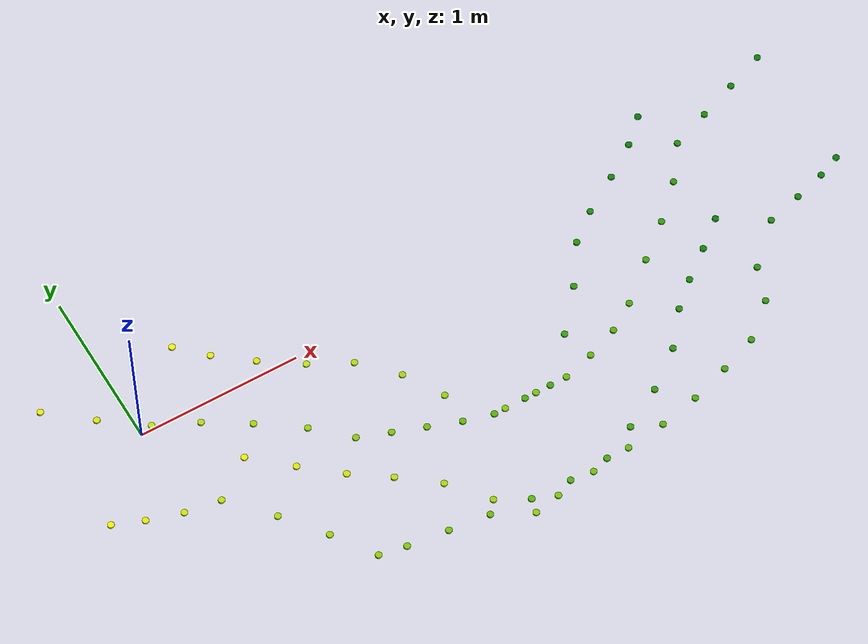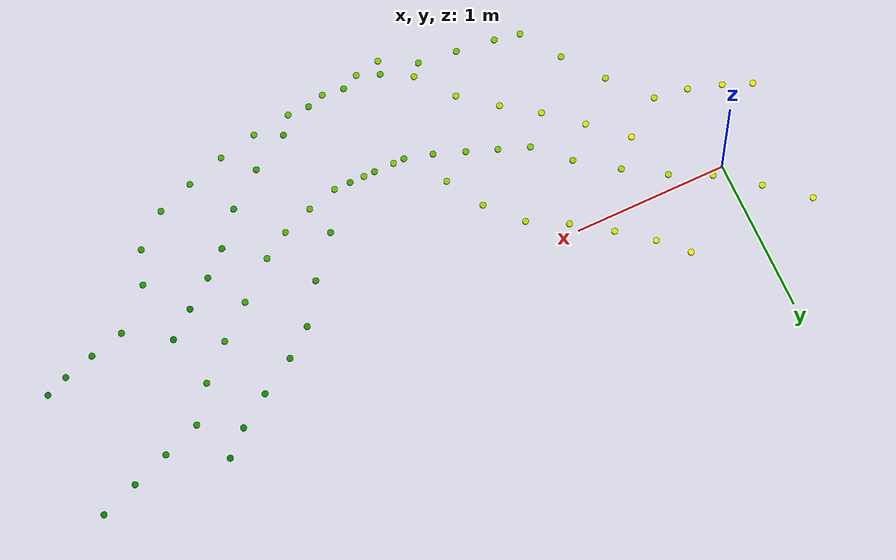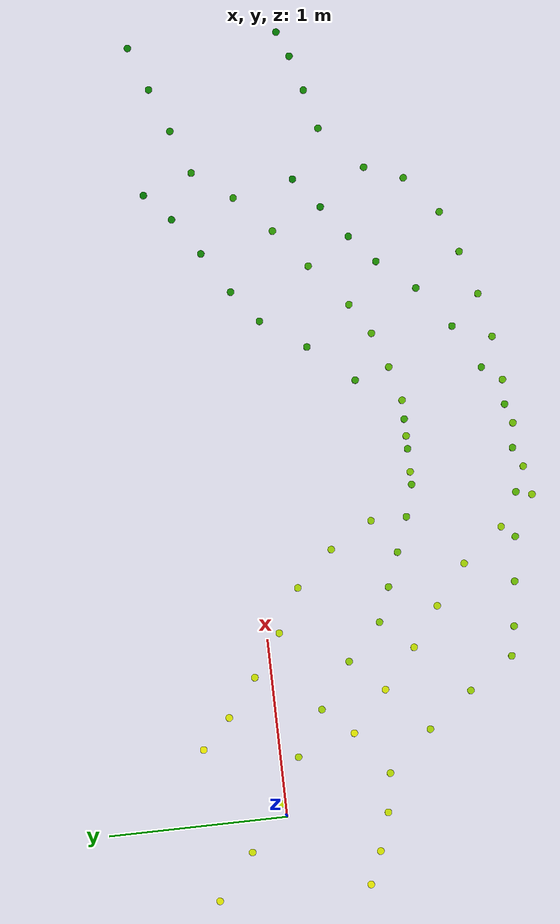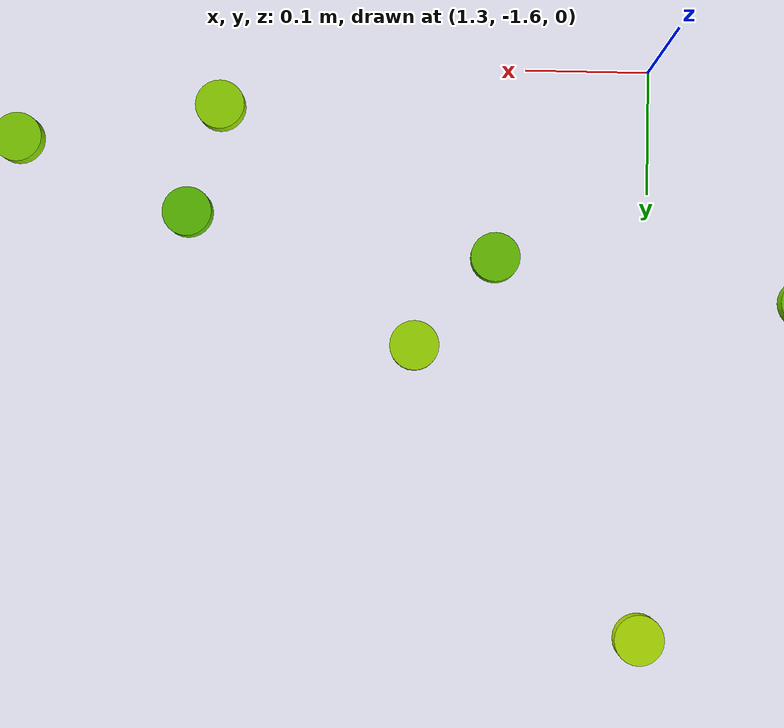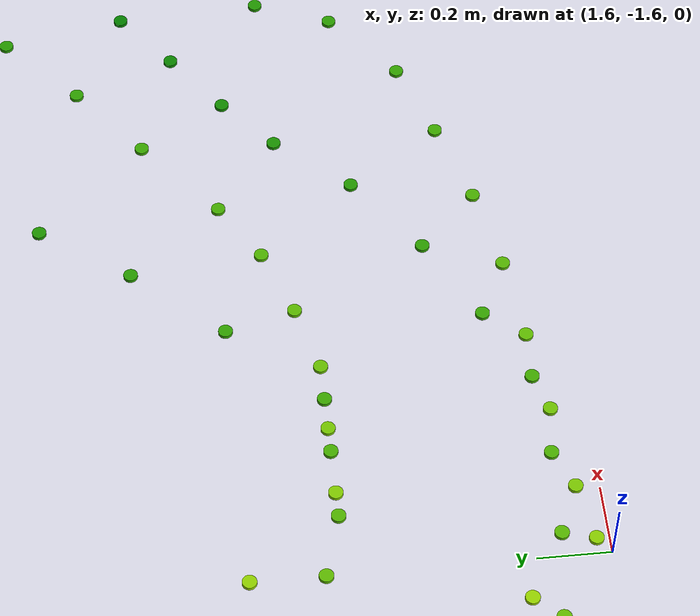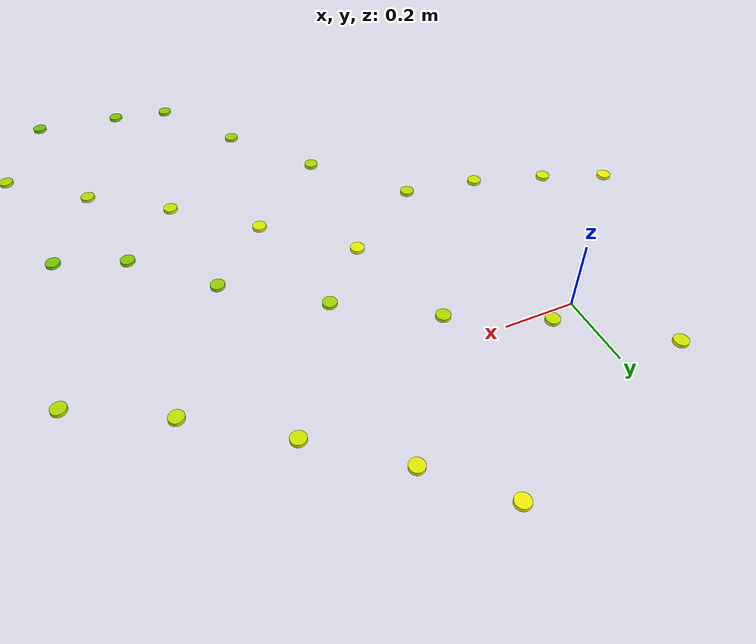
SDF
<?xml version='1.0' encoding='UTF-8'?>
<sdf version="1.7"><model name="footsteps"><static>1</static><pose>0 0 0 0 0 0</pose><model name="footstep 0"><static>1</static><link name="footstep_link"><pose>0.424264 0.424264 0 0 0 0</pose><visual name="footstep_visual"><geometry><cylinder><radius>0.02</radius><length>0.01</length></cylinder></geometry><material><ambient>1.0 0.9999999999999998 0.0 1</ambient><diffuse>1.0 0.9999999999999998 0.0 1</diffuse><specular>0.1 0.1 0.1 1</specular><emissive>1.0 0.9999999999999998 0.0 1</emissive></material></visual></link></model><model name="footstep 1"><static>1</static><link name="footstep_link"><pose>-0.424264 -0.424264 0 0 0 0</pose><visual name="footstep_visual"><geometry><cylinder><radius>0.02</radius><length>0.01</length></cylinder></geometry><material><ambient>0.9811172794706731 0.9936957061305535 0.0 1</ambient><diffuse>0.9811172794706731 0.9936957061305535 0.0 1</diffuse><specular>0.1 0.1 0.1 1</specular><emissive>0.9811172794706731 0.9936957061305535 0.0 1</emissive></material></visual></link></model><model name="footstep 2"><static>1</static><link name="footstep_link"><pose>0.424264 -0.424264 0 0 0 0</pose><visual name="footstep_visual"><geometry><cylinder><radius>0.02</radius><length>0.01</length></cylinder></geometry><material><ambient>0.9623941613177879 0.9873914122611069 0.0 1</ambient><diffuse>0.9623941613177879 0.9873914122611069 0.0 1</diffuse><specular>0.1 0.1 0.1 1</specular><emissive>0.9623941613177879 0.9873914122611069 0.0 1</emissive></material></visual></link></model><model name="footstep 3"><static>1</static><link name="footstep_link"><pose>-0.424264 0.424264 0 0 0 0</pose><visual name="footstep_visual"><geometry><cylinder><radius>0.02</radius><length>0.01</length></cylinder></geometry><material><ambient>0.9438306455413445 0.9810871183916605 0.0 1</ambient><diffuse>0.9438306455413445 0.9810871183916605 0.0 1</diffuse><specular>0.1 0.1 0.1 1</specular><emissive>0.9438306455413445 0.9810871183916605 0.0 1</emissive></material></visual></link></model><model name="footstep 4"><static>1</static><link name="footstep_link"><pose>0.58609 0.262438 0 0 0 0</pose><visual name="footstep_visual"><geometry><cylinder><radius>0.02</radius><length>0.01</length></cylinder></geometry><material><ambient>0.9254267321413429 0.974782824522214 0.0 1</ambient><diffuse>0.9254267321413429 0.974782824522214 0.0 1</diffuse><specular>0.1 0.1 0.1 1</specular><emissive>0.9254267321413429 0.974782824522214 0.0 1</emissive></material></visual></link></model><model name="footstep 5"><static>1</static><link name="footstep_link"><pose>-0.245633 -0.497858 0 0 0 0</pose><visual name="footstep_visual"><geometry><cylinder><radius>0.02</radius><length>0.01</length></cylinder></geometry><material><ambient>0.9071824211177821 0.9684785306527675 0.0 1</ambient><diffuse>0.9071824211177821 0.9684785306527675 0.0 1</diffuse><specular>0.1 0.1 0.1 1</specular><emissive>0.9071824211177821 0.9684785306527675 0.0 1</emissive></material></visual></link></model><model name="footstep 6"><static>1</static><link name="footstep_link"><pose>0.647552 -0.624809 0 0 0 0</pose><visual name="footstep_visual"><geometry><cylinder><radius>0.02</radius><length>0.01</length></cylinder></geometry><material><ambient>0.8890977124706637 0.9621742367833209 0.0 1</ambient><diffuse>0.8890977124706637 0.9621742367833209 0.0 1</diffuse><specular>0.1 0.1 0.1 1</specular><emissive>0.8890977124706637 0.9621742367833209 0.0 1</emissive></material></visual></link></model><model name="footstep 7"><static>1</static><link name="footstep_link"><pose>-0.174264 0.214453 0 0 0 0</pose><visual name="footstep_visual"><geometry><cylinder><radius>0.02</radius><length>0.01</length></cylinder></geometry><material><ambient>0.8711726061999869 0.9558699429138744 0.0 1</ambient><diffuse>0.8711726061999869 0.9558699429138744 0.0 1</diffuse><specular>0.1 0.1 0.1 1</specular><emissive>0.8711726061999869 0.9558699429138744 0.0 1</emissive></material></visual></link></model><model name="footstep 8"><static>1</static><link name="footstep_link"><pose>0.794692 0.0958278 0 0 0 0</pose><visual name="footstep_visual"><geometry><cylinder><radius>0.02</radius><length>0.01</length></cylinder></geometry><material><ambient>0.8534071023057512 0.9495656490444279 0.0 1</ambient><diffuse>0.8534071023057512 0.9495656490444279 0.0 1</diffuse><specular>0.1 0.1 0.1 1</specular><emissive>0.8534071023057512 0.9495656490444279 0.0 1</emissive></material></visual></link></model><model name="footstep 9"><static>1</static><link name="footstep_link"><pose>-0.0356693 -0.563821 0 0 0 0</pose><visual name="footstep_visual"><geometry><cylinder><radius>0.02</radius><length>0.01</length></cylinder></geometry><material><ambient>0.8358012007879579 0.9432613551749813 0.0 1</ambient><diffuse>0.8358012007879579 0.9432613551749813 0.0 1</diffuse><specular>0.1 0.1 0.1 1</specular><emissive>0.8358012007879579 0.9432613551749813 0.0 1</emissive></material></visual></link></model><model name="footstep 10"><static>1</static><link name="footstep_link"><pose>0.86535 -0.810844 0 0 0 0</pose><visual name="footstep_visual"><geometry><cylinder><radius>0.02</radius><length>0.01</length></cylinder></geometry><material><ambient>0.8183549016466064 0.9369570613055349 0.0 1</ambient><diffuse>0.8183549016466064 0.9369570613055349 0.0 1</diffuse><specular>0.1 0.1 0.1 1</specular><emissive>0.8183549016466064 0.9369570613055349 0.0 1</emissive></material></visual></link></model><model name="footstep 11"><static>1</static><link name="footstep_link"><pose>0.0757359 0.0251602 0 0 0 0</pose><visual name="footstep_visual"><geometry><cylinder><radius>0.02</radius><length>0.01</length></cylinder></geometry><material><ambient>0.8010682048816965 0.9306527674360884 0.0 1</ambient><diffuse>0.8010682048816965 0.9306527674360884 0.0 1</diffuse><specular>0.1 0.1 0.1 1</specular><emissive>0.8010682048816965 0.9306527674360884 0.0 1</emissive></material></visual></link></model><model name="footstep 12"><static>1</static><link name="footstep_link"><pose>1.02786 -0.0677272 0 0 0 0</pose><visual name="footstep_visual"><geometry><cylinder><radius>0.02</radius><length>0.01</length></cylinder></geometry><material><ambient>0.7839411104932282 0.9243484735666418 0.0 1</ambient><diffuse>0.7839411104932282 0.9243484735666418 0.0 1</diffuse><specular>0.1 0.1 0.1 1</specular><emissive>0.7839411104932282 0.9243484735666418 0.0 1</emissive></material></visual></link></model><model name="footstep 13"><static>1</static><link name="footstep_link"><pose>0.180484 -0.6 0 0 0 0</pose><visual name="footstep_visual"><geometry><cylinder><radius>0.02</radius><length>0.01</length></cylinder></geometry><material><ambient>0.7669736184812009 0.9180441796971953 0.0 1</ambient><diffuse>0.7669736184812009 0.9180441796971953 0.0 1</diffuse><specular>0.1 0.1 0.1 1</specular><emissive>0.7669736184812009 0.9180441796971953 0.0 1</emissive></material></visual></link></model><model name="footstep 14"><static>1</static><link name="footstep_link"><pose>1.08305 -0.966189 0 0 0 0</pose><visual name="footstep_visual"><geometry><cylinder><radius>0.02</radius><length>0.01</length></cylinder></geometry><material><ambient>0.750165728845616 0.9117398858277488 0.0 1</ambient><diffuse>0.750165728845616 0.9117398858277488 0.0 1</diffuse><specular>0.1 0.1 0.1 1</specular><emissive>0.750165728845616 0.9117398858277488 0.0 1</emissive></material></visual></link></model><model name="footstep 15"><static>1</static><link name="footstep_link"><pose>0.325736 -0.0993528 0 0 0 0</pose><visual name="footstep_visual"><geometry><cylinder><radius>0.02</radius><length>0.01</length></cylinder></geometry><material><ambient>0.7335174415864729 0.9054355919583024 0.0 1</ambient><diffuse>0.7335174415864729 0.9054355919583024 0.0 1</diffuse><specular>0.1 0.1 0.1 1</specular><emissive>0.7335174415864729 0.9054355919583024 0.0 1</emissive></material></visual></link></model><model name="footstep 16"><static>1</static><link name="footstep_link"><pose>1.2688 -0.199307 0 0 0 0</pose><visual name="footstep_visual"><geometry><cylinder><radius>0.02</radius><length>0.01</length></cylinder></geometry><material><ambient>0.7170287567037708 0.8991312980888558 0.0 1</ambient><diffuse>0.7170287567037708 0.8991312980888558 0.0 1</diffuse><specular>0.1 0.1 0.1 1</specular><emissive>0.7170287567037708 0.8991312980888558 0.0 1</emissive></material></visual></link></model><model name="footstep 17"><static>1</static><link name="footstep_link"><pose>0.4 -0.85 0 0 0 0</pose><visual name="footstep_visual"><geometry><cylinder><radius>0.02</radius><length>0.01</length></cylinder></geometry><material><ambient>0.7006996741975114 0.8928270042194093 0.0 1</ambient><diffuse>0.7006996741975114 0.8928270042194093 0.0 1</diffuse><specular>0.1 0.1 0.1 1</specular><emissive>0.7006996741975114 0.8928270042194093 0.0 1</emissive></material></visual></link></model><model name="footstep 18"><static>1</static><link name="footstep_link"><pose>1.30341 -1.14323 0 0 0 0</pose><visual name="footstep_visual"><geometry><cylinder><radius>0.02</radius><length>0.01</length></cylinder></geometry><material><ambient>0.6845301940676927 0.8865227103499628 0.0 1</ambient><diffuse>0.6845301940676927 0.8865227103499628 0.0 1</diffuse><specular>0.1 0.1 0.1 1</specular><emissive>0.6845301940676927 0.8865227103499628 0.0 1</emissive></material></visual></link></model><model name="footstep 19"><static>1</static><link name="footstep_link"><pose>0.575736 -0.258455 0 0 0 0</pose><visual name="footstep_visual"><geometry><cylinder><radius>0.02</radius><length>0.01</length></cylinder></geometry><material><ambient>0.6685203163143162 0.8802184164805162 0.0 1</ambient><diffuse>0.6685203163143162 0.8802184164805162 0.0 1</diffuse><specular>0.1 0.1 0.1 1</specular><emissive>0.6685203163143162 0.8802184164805162 0.0 1</emissive></material></visual></link></model><model name="footstep 20"><static>1</static><link name="footstep_link"><pose>1.46311 -0.409743 0 0 0 0</pose><visual name="footstep_visual"><geometry><cylinder><radius>0.02</radius><length>0.01</length></cylinder></geometry><material><ambient>0.6526700409373813 0.8739141226110697 0.0 1</ambient><diffuse>0.6526700409373813 0.8739141226110697 0.0 1</diffuse><specular>0.1 0.1 0.1 1</specular><emissive>0.6526700409373813 0.8739141226110697 0.0 1</emissive></material></visual></link></model><model name="footstep 21"><static>1</static><link name="footstep_link"><pose>0.59004 -1.1 0 0 0 0</pose><visual name="footstep_visual"><geometry><cylinder><radius>0.02</radius><length>0.01</length></cylinder></geometry><material><ambient>0.6369793679368876 0.8676098287416232 0.0 1</ambient><diffuse>0.6369793679368876 0.8676098287416232 0.0 1</diffuse><specular>0.1 0.1 0.1 1</specular><emissive>0.6369793679368876 0.8676098287416232 0.0 1</emissive></material></visual></link></model><model name="footstep 22"><static>1</static><link name="footstep_link"><pose>1.48608 -1.37338 0 0 0 0</pose><visual name="footstep_visual"><geometry><cylinder><radius>0.02</radius><length>0.01</length></cylinder></geometry><material><ambient>0.6214482973128362 0.8613055348721768 0.0 1</ambient><diffuse>0.6214482973128362 0.8613055348721768 0.0 1</diffuse><specular>0.1 0.1 0.1 1</specular><emissive>0.6214482973128362 0.8613055348721768 0.0 1</emissive></material></visual></link></model><model name="footstep 23"><static>1</static><link name="footstep_link"><pose>0.825736 -0.439871 0 0 0 0</pose><visual name="footstep_visual"><geometry><cylinder><radius>0.02</radius><length>0.01</length></cylinder></geometry><material><ambient>0.6060768290652265 0.8550012410027302 0.0 1</ambient><diffuse>0.6060768290652265 0.8550012410027302 0.0 1</diffuse><specular>0.1 0.1 0.1 1</specular><emissive>0.6060768290652265 0.8550012410027302 0.0 1</emissive></material></visual></link></model><model name="footstep 24"><static>1</static><link name="footstep_link"><pose>1.6 -0.65 0 0 0 0</pose><visual name="footstep_visual"><geometry><cylinder><radius>0.02</radius><length>0.01</length></cylinder></geometry><material><ambient>0.5908649631940585 0.8486969471332837 0.0 1</ambient><diffuse>0.5908649631940585 0.8486969471332837 0.0 1</diffuse><specular>0.1 0.1 0.1 1</specular><emissive>0.5908649631940585 0.8486969471332837 0.0 1</emissive></material></visual></link></model><model name="footstep 25"><static>1</static><link name="footstep_link"><pose>0.757684 -1.35 0 0 0 0</pose><visual name="footstep_visual"><geometry><cylinder><radius>0.02</radius><length>0.01</length></cylinder></geometry><material><ambient>0.575812699699332 0.8423926532638372 0.0 1</ambient><diffuse>0.575812699699332 0.8423926532638372 0.0 1</diffuse><specular>0.1 0.1 0.1 1</specular><emissive>0.575812699699332 0.8423926532638372 0.0 1</emissive></material></visual></link></model><model name="footstep 26"><static>1</static><link name="footstep_link"><pose>1.64812 -1.56599 0 0 0 0</pose><visual name="footstep_visual"><geometry><cylinder><radius>0.02</radius><length>0.01</length></cylinder></geometry><material><ambient>0.5609200385810468 0.8360883593943906 0.0 1</ambient><diffuse>0.5609200385810468 0.8360883593943906 0.0 1</diffuse><specular>0.1 0.1 0.1 1</specular><emissive>0.5609200385810468 0.8360883593943906 0.0 1</emissive></material></visual></link></model><model name="footstep 27"><static>1</static><link name="footstep_link"><pose>1.02714 -0.633685 0 0 0 0</pose><visual name="footstep_visual"><geometry><cylinder><radius>0.02</radius><length>0.01</length></cylinder></geometry><material><ambient>0.5461869798392038 0.8297840655249442 0.0 1</ambient><diffuse>0.5461869798392038 0.8297840655249442 0.0 1</diffuse><specular>0.1 0.1 0.1 1</specular><emissive>0.5461869798392038 0.8297840655249442 0.0 1</emissive></material></visual></link></model><model name="footstep 28"><static>1</static><link name="footstep_link"><pose>1.85 -0.9 0 0 0 0</pose><visual name="footstep_visual"><geometry><cylinder><radius>0.02</radius><length>0.01</length></cylinder></geometry><material><ambient>0.5316135234738023 0.8234797716554976 0.0 1</ambient><diffuse>0.5316135234738023 0.8234797716554976 0.0 1</diffuse><specular>0.1 0.1 0.1 1</specular><emissive>0.5316135234738023 0.8234797716554976 0.0 1</emissive></material></visual></link></model><model name="footstep 29"><static>1</static><link name="footstep_link"><pose>0.922126 -1.38199 0 0 0 0</pose><visual name="footstep_visual"><geometry><cylinder><radius>0.02</radius><length>0.01</length></cylinder></geometry><material><ambient>0.5171996694848422 0.8171754777860512 0.0 1</ambient><diffuse>0.5171996694848422 0.8171754777860512 0.0 1</diffuse><specular>0.1 0.1 0.1 1</specular><emissive>0.5171996694848422 0.8171754777860512 0.0 1</emissive></material></visual></link></model><model name="footstep 30"><static>1</static><link name="footstep_link"><pose>1.81176 -1.53584 0 0 0 0</pose><visual name="footstep_visual"><geometry><cylinder><radius>0.02</radius><length>0.01</length></cylinder></geometry><material><ambient>0.5029454178723242 0.8108711839166046 0.0 1</ambient><diffuse>0.5029454178723242 0.8108711839166046 0.0 1</diffuse><specular>0.1 0.1 0.1 1</specular><emissive>0.5029454178723242 0.8108711839166046 0.0 1</emissive></material></visual></link></model><model name="footstep 31"><static>1</static><link name="footstep_link"><pose>1.21809 -0.7058 0 0 0 0</pose><visual name="footstep_visual"><geometry><cylinder><radius>0.02</radius><length>0.01</length></cylinder></geometry><material><ambient>0.4888507686362479 0.8045668900471581 0.0 1</ambient><diffuse>0.4888507686362479 0.8045668900471581 0.0 1</diffuse><specular>0.1 0.1 0.1 1</specular><emissive>0.4888507686362479 0.8045668900471581 0.0 1</emissive></material></visual></link></model><model name="footstep 32"><static>1</static><link name="footstep_link"><pose>2.05451 -0.9 0 0 0 0</pose><visual name="footstep_visual"><geometry><cylinder><radius>0.02</radius><length>0.01</length></cylinder></geometry><material><ambient>0.47491572177661323 0.7982625961777116 0.0 1</ambient><diffuse>0.47491572177661323 0.7982625961777116 0.0 1</diffuse><specular>0.1 0.1 0.1 1</specular><emissive>0.47491572177661323 0.7982625961777116 0.0 1</emissive></material></visual></link></model><model name="footstep 33"><static>1</static><link name="footstep_link"><pose>1.17213 -1.41398 0 0 0 0</pose><visual name="footstep_visual"><geometry><cylinder><radius>0.02</radius><length>0.01</length></cylinder></geometry><material><ambient>0.46114027729342033 0.791958302308265 0.0 1</ambient><diffuse>0.46114027729342033 0.791958302308265 0.0 1</diffuse><specular>0.1 0.1 0.1 1</specular><emissive>0.46114027729342033 0.791958302308265 0.0 1</emissive></material></visual></link></model><model name="footstep 34"><static>1</static><link name="footstep_link"><pose>2.06176 -1.50569 0 0 0 0</pose><visual name="footstep_visual"><geometry><cylinder><radius>0.02</radius><length>0.01</length></cylinder></geometry><material><ambient>0.44752443518666857 0.7856540084388186 0.0 1</ambient><diffuse>0.44752443518666857 0.7856540084388186 0.0 1</diffuse><specular>0.1 0.1 0.1 1</specular><emissive>0.44752443518666857 0.7856540084388186 0.0 1</emissive></material></visual></link></model><model name="footstep 35"><static>1</static><link name="footstep_link"><pose>1.40759 -0.777914 0 0 0 0</pose><visual name="footstep_visual"><geometry><cylinder><radius>0.02</radius><length>0.01</length></cylinder></geometry><material><ambient>0.434068195456359 0.7793497145693721 0.0 1</ambient><diffuse>0.434068195456359 0.7793497145693721 0.0 1</diffuse><specular>0.1 0.1 0.1 1</specular><emissive>0.434068195456359 0.7793497145693721 0.0 1</emissive></material></visual></link></model><model name="footstep 36"><static>1</static><link name="footstep_link"><pose>2.25755 -0.9 0 0 0 0</pose><visual name="footstep_visual"><geometry><cylinder><radius>0.02</radius><length>0.01</length></cylinder></geometry><material><ambient>0.4207715581024911 0.7730454206999255 0.0 1</ambient><diffuse>0.4207715581024911 0.7730454206999255 0.0 1</diffuse><specular>0.1 0.1 0.1 1</specular><emissive>0.4207715581024911 0.7730454206999255 0.0 1</emissive></material></visual></link></model><model name="footstep 37"><static>1</static><link name="footstep_link"><pose>1.42213 -1.44597 0 0 0 0</pose><visual name="footstep_visual"><geometry><cylinder><radius>0.02</radius><length>0.01</length></cylinder></geometry><material><ambient>0.40763452312506443 0.766741126830479 0.0 1</ambient><diffuse>0.40763452312506443 0.766741126830479 0.0 1</diffuse><specular>0.1 0.1 0.1 1</specular><emissive>0.40763452312506443 0.766741126830479 0.0 1</emissive></material></visual></link></model><model name="footstep 38"><static>1</static><link name="footstep_link"><pose>2.31176 -1.47554 0 0 0 0</pose><visual name="footstep_visual"><geometry><cylinder><radius>0.02</radius><length>0.01</length></cylinder></geometry><material><ambient>0.3946570905240799 0.7604368329610325 0.0 1</ambient><diffuse>0.3946570905240799 0.7604368329610325 0.0 1</diffuse><specular>0.1 0.1 0.1 1</specular><emissive>0.3946570905240799 0.7604368329610325 0.0 1</emissive></material></visual></link></model><model name="footstep 39"><static>1</static><link name="footstep_link"><pose>1.6 -0.850028 0 0 0 0</pose><visual name="footstep_visual"><geometry><cylinder><radius>0.02</radius><length>0.01</length></cylinder></geometry><material><ambient>0.38183926029953713 0.7541325390915861 0.0 1</ambient><diffuse>0.38183926029953713 0.7541325390915861 0.0 1</diffuse><specular>0.1 0.1 0.1 1</specular><emissive>0.38183926029953713 0.7541325390915861 0.0 1</emissive></material></visual></link></model><model name="footstep 40"><static>1</static><link name="footstep_link"><pose>2.45283 -0.846518 0 0 0 0</pose><visual name="footstep_visual"><geometry><cylinder><radius>0.02</radius><length>0.01</length></cylinder></geometry><material><ambient>0.3691810324514354 0.7478282452221394 0.0 1</ambient><diffuse>0.3691810324514354 0.7478282452221394 0.0 1</diffuse><specular>0.1 0.1 0.1 1</specular><emissive>0.3691810324514354 0.7478282452221394 0.0 1</emissive></material></visual></link></model><model name="footstep 41"><static>1</static><link name="footstep_link"><pose>1.67213 -1.47795 0 0 0 0</pose><visual name="footstep_visual"><geometry><cylinder><radius>0.02</radius><length>0.01</length></cylinder></geometry><material><ambient>0.3566824069797765 0.741523951352693 0.0 1</ambient><diffuse>0.3566824069797765 0.741523951352693 0.0 1</diffuse><specular>0.1 0.1 0.1 1</specular><emissive>0.3566824069797765 0.741523951352693 0.0 1</emissive></material></visual></link></model><model name="footstep 42"><static>1</static><link name="footstep_link"><pose>2.56176 -1.44539 0 0 0 0</pose><visual name="footstep_visual"><geometry><cylinder><radius>0.02</radius><length>0.01</length></cylinder></geometry><material><ambient>0.34434338388455815 0.7352196574832465 0.0 1</ambient><diffuse>0.34434338388455815 0.7352196574832465 0.0 1</diffuse><specular>0.1 0.1 0.1 1</specular><emissive>0.34434338388455815 0.7352196574832465 0.0 1</emissive></material></visual></link></model><model name="footstep 43"><static>1</static><link name="footstep_link"><pose>1.77813 -0.9 0 0 0 0</pose><visual name="footstep_visual"><geometry><cylinder><radius>0.02</radius><length>0.01</length></cylinder></geometry><material><ambient>0.3321639631657821 0.7289153636137999 0.0 1</ambient><diffuse>0.3321639631657821 0.7289153636137999 0.0 1</diffuse><specular>0.1 0.1 0.1 1</specular><emissive>0.3321639631657821 0.7289153636137999 0.0 1</emissive></material></visual></link></model><model name="footstep 44"><static>1</static><link name="footstep_link"><pose>2.65416 -0.770893 0 0 0 0</pose><visual name="footstep_visual"><geometry><cylinder><radius>0.02</radius><length>0.01</length></cylinder></geometry><material><ambient>0.32014414482344766 0.7226110697443534 0.0 1</ambient><diffuse>0.32014414482344766 0.7226110697443534 0.0 1</diffuse><specular>0.1 0.1 0.1 1</specular><emissive>0.32014414482344766 0.7226110697443534 0.0 1</emissive></material></visual></link></model><model name="footstep 45"><static>1</static><link name="footstep_link"><pose>1.92213 -1.4878 0 0 0 0</pose><visual name="footstep_visual"><geometry><cylinder><radius>0.02</radius><length>0.01</length></cylinder></geometry><material><ambient>0.3082839288575544 0.7163067758749069 0.0 1</ambient><diffuse>0.3082839288575544 0.7163067758749069 0.0 1</diffuse><specular>0.1 0.1 0.1 1</specular><emissive>0.3082839288575544 0.7163067758749069 0.0 1</emissive></material></visual></link></model><model name="footstep 46"><static>1</static><link name="footstep_link"><pose>2.81176 -1.3931 0 0 0 0</pose><visual name="footstep_visual"><geometry><cylinder><radius>0.02</radius><length>0.01</length></cylinder></geometry><material><ambient>0.2965833152681039 0.7100024820054605 0.0 1</ambient><diffuse>0.2965833152681039 0.7100024820054605 0.0 1</diffuse><specular>0.1 0.1 0.1 1</specular><emissive>0.2965833152681039 0.7100024820054605 0.0 1</emissive></material></visual></link></model><model name="footstep 47"><static>1</static><link name="footstep_link"><pose>1.98097 -0.9 0 0 0 0</pose><visual name="footstep_visual"><geometry><cylinder><radius>0.02</radius><length>0.01</length></cylinder></geometry><material><ambient>0.285042304055094 0.7036981881360138 0.0 1</ambient><diffuse>0.285042304055094 0.7036981881360138 0.0 1</diffuse><specular>0.1 0.1 0.1 1</specular><emissive>0.285042304055094 0.7036981881360138 0.0 1</emissive></material></visual></link></model><model name="footstep 48"><static>1</static><link name="footstep_link"><pose>2.82965 -0.662486 0 0 0 0</pose><visual name="footstep_visual"><geometry><cylinder><radius>0.02</radius><length>0.01</length></cylinder></geometry><material><ambient>0.2736608952185263 0.6973938942665674 0.0 1</ambient><diffuse>0.2736608952185263 0.6973938942665674 0.0 1</diffuse><specular>0.1 0.1 0.1 1</specular><emissive>0.2736608952185263 0.6973938942665674 0.0 1</emissive></material></visual></link></model><model name="footstep 49"><static>1</static><link name="footstep_link"><pose>2.17213 -1.47198 0 0 0 0</pose><visual name="footstep_visual"><geometry><cylinder><radius>0.02</radius><length>0.01</length></cylinder></geometry><material><ambient>0.26243908875840033 0.6910896003971209 0.0 1</ambient><diffuse>0.26243908875840033 0.6910896003971209 0.0 1</diffuse><specular>0.1 0.1 0.1 1</specular><emissive>0.26243908875840033 0.6910896003971209 0.0 1</emissive></material></visual></link></model><model name="footstep 50"><static>1</static><link name="footstep_link"><pose>3.06176 -1.31514 0 0 0 0</pose><visual name="footstep_visual"><geometry><cylinder><radius>0.02</radius><length>0.01</length></cylinder></geometry><material><ambient>0.25137688467471553 0.6847853065276743 0.0 1</ambient><diffuse>0.25137688467471553 0.6847853065276743 0.0 1</diffuse><specular>0.1 0.1 0.1 1</specular><emissive>0.25137688467471553 0.6847853065276743 0.0 1</emissive></material></visual></link></model><model name="footstep 51"><static>1</static><link name="footstep_link"><pose>2.15 -0.9 0 0 0 0</pose><visual name="footstep_visual"><geometry><cylinder><radius>0.02</radius><length>0.01</length></cylinder></geometry><material><ambient>0.24047428296747297 0.6784810126582279 0.0 1</ambient><diffuse>0.24047428296747297 0.6784810126582279 0.0 1</diffuse><specular>0.1 0.1 0.1 1</specular><emissive>0.24047428296747297 0.6784810126582279 0.0 1</emissive></material></visual></link></model><model name="footstep 52"><static>1</static><link name="footstep_link"><pose>3.07279 -0.458271 0 0 0 0</pose><visual name="footstep_visual"><geometry><cylinder><radius>0.02</radius><length>0.01</length></cylinder></geometry><material><ambient>0.22973128363667195 0.6721767187887813 0.0 1</ambient><diffuse>0.22973128363667195 0.6721767187887813 0.0 1</diffuse><specular>0.1 0.1 0.1 1</specular><emissive>0.22973128363667195 0.6721767187887813 0.0 1</emissive></material></visual></link></model><model name="footstep 53"><static>1</static><link name="footstep_link"><pose>2.39477 -1.36548 0 0 0 0</pose><visual name="footstep_visual"><geometry><cylinder><radius>0.02</radius><length>0.01</length></cylinder></geometry><material><ambient>0.21914788668231228 0.6658724249193348 0.0 1</ambient><diffuse>0.21914788668231228 0.6658724249193348 0.0 1</diffuse><specular>0.1 0.1 0.1 1</specular><emissive>0.21914788668231228 0.6658724249193348 0.0 1</emissive></material></visual></link></model><model name="footstep 54"><static>1</static><link name="footstep_link"><pose>3.29896 -1.22912 0 0 0 0</pose><visual name="footstep_visual"><geometry><cylinder><radius>0.02</radius><length>0.01</length></cylinder></geometry><material><ambient>0.20872409210439513 0.6595681310498883 0.0 1</ambient><diffuse>0.20872409210439513 0.6595681310498883 0.0 1</diffuse><specular>0.1 0.1 0.1 1</specular><emissive>0.20872409210439513 0.6595681310498883 0.0 1</emissive></material></visual></link></model><model name="footstep 55"><static>1</static><link name="footstep_link"><pose>2.4 -0.65 0 0 0 0</pose><visual name="footstep_visual"><geometry><cylinder><radius>0.02</radius><length>0.01</length></cylinder></geometry><material><ambient>0.1984598999029188 0.6532638371804418 0.0 1</ambient><diffuse>0.1984598999029188 0.6532638371804418 0.0 1</diffuse><specular>0.1 0.1 0.1 1</specular><emissive>0.1984598999029188 0.6532638371804418 0.0 1</emissive></material></visual></link></model><model name="footstep 56"><static>1</static><link name="footstep_link"><pose>3.29372 -0.279282 0 0 0 0</pose><visual name="footstep_visual"><geometry><cylinder><radius>0.02</radius><length>0.01</length></cylinder></geometry><material><ambient>0.18835531007788456 0.6469595433109953 0.0 1</ambient><diffuse>0.18835531007788456 0.6469595433109953 0.0 1</diffuse><specular>0.1 0.1 0.1 1</specular><emissive>0.18835531007788456 0.6469595433109953 0.0 1</emissive></material></visual></link></model><model name="footstep 57"><static>1</static><link name="footstep_link"><pose>2.64477 -1.2274 0 0 0 0</pose><visual name="footstep_visual"><geometry><cylinder><radius>0.02</radius><length>0.01</length></cylinder></geometry><material><ambient>0.178410322629292 0.6406552494415487 0.0 1</ambient><diffuse>0.178410322629292 0.6406552494415487 0.0 1</diffuse><specular>0.1 0.1 0.1 1</specular><emissive>0.178410322629292 0.6406552494415487 0.0 1</emissive></material></visual></link></model><model name="footstep 58"><static>1</static><link name="footstep_link"><pose>3.51484 -1.04854 0 0 0 0</pose><visual name="footstep_visual"><geometry><cylinder><radius>0.02</radius><length>0.01</length></cylinder></geometry><material><ambient>0.16862493755714075 0.6343509555721023 0.0 1</ambient><diffuse>0.16862493755714075 0.6343509555721023 0.0 1</diffuse><specular>0.1 0.1 0.1 1</specular><emissive>0.16862493755714075 0.6343509555721023 0.0 1</emissive></material></visual></link></model><model name="footstep 59"><static>1</static><link name="footstep_link"><pose>2.6169 -0.4 0 0 0 0</pose><visual name="footstep_visual"><geometry><cylinder><radius>0.02</radius><length>0.01</length></cylinder></geometry><material><ambient>0.15899915486143196 0.6280466617026557 0.0 1</ambient><diffuse>0.15899915486143196 0.6280466617026557 0.0 1</diffuse><specular>0.1 0.1 0.1 1</specular><emissive>0.15899915486143196 0.6280466617026557 0.0 1</emissive></material></visual></link></model><model name="footstep 60"><static>1</static><link name="footstep_link"><pose>3.50594 -0.0786581 0 0 0 0</pose><visual name="footstep_visual"><geometry><cylinder><radius>0.02</radius><length>0.01</length></cylinder></geometry><material><ambient>0.14953297454216408 0.6217423678332092 0.0 1</ambient><diffuse>0.14953297454216408 0.6217423678332092 0.0 1</diffuse><specular>0.1 0.1 0.1 1</specular><emissive>0.14953297454216408 0.6217423678332092 0.0 1</emissive></material></visual></link></model><model name="footstep 61"><static>1</static><link name="footstep_link"><pose>2.88223 -1.0488 0 0 0 0</pose><visual name="footstep_visual"><geometry><cylinder><radius>0.02</radius><length>0.01</length></cylinder></geometry><material><ambient>0.14022639659933783 0.6154380739637627 0.0 1</ambient><diffuse>0.14022639659933783 0.6154380739637627 0.0 1</diffuse><specular>0.1 0.1 0.1 1</specular><emissive>0.14022639659933783 0.6154380739637627 0.0 1</emissive></material></visual></link></model><model name="footstep 62"><static>1</static><link name="footstep_link"><pose>3.6 -0.83238 0 0 0 0</pose><visual name="footstep_visual"><geometry><cylinder><radius>0.02</radius><length>0.01</length></cylinder></geometry><material><ambient>0.13107942103295414 0.6091337800943162 0.0 1</ambient><diffuse>0.13107942103295414 0.6091337800943162 0.0 1</diffuse><specular>0.1 0.1 0.1 1</specular><emissive>0.13107942103295414 0.6091337800943162 0.0 1</emissive></material></visual></link></model><model name="footstep 63"><static>1</static><link name="footstep_link"><pose>2.79112 -0.15 0 0 0 0</pose><visual name="footstep_visual"><geometry><cylinder><radius>0.02</radius><length>0.01</length></cylinder></geometry><material><ambient>0.12209204784301131 0.6028294862248698 0.0 1</ambient><diffuse>0.12209204784301131 0.6028294862248698 0.0 1</diffuse><specular>0.1 0.1 0.1 1</specular><emissive>0.12209204784301131 0.6028294862248698 0.0 1</emissive></material></visual></link></model><model name="footstep 64"><static>1</static><link name="footstep_link"><pose>3.67426 0.141625 0 0 0 0</pose><visual name="footstep_visual"><geometry><cylinder><radius>0.02</radius><length>0.01</length></cylinder></geometry><material><ambient>0.11326427702951053 0.5965251923554231 0.0 1</ambient><diffuse>0.11326427702951053 0.5965251923554231 0.0 1</diffuse><specular>0.1 0.1 0.1 1</specular><emissive>0.11326427702951053 0.5965251923554231 0.0 1</emissive></material></visual></link></model><model name="footstep 65"><static>1</static><link name="footstep_link"><pose>3.05746 -0.841474 0 0 0 0</pose><visual name="footstep_visual"><geometry><cylinder><radius>0.02</radius><length>0.01</length></cylinder></geometry><material><ambient>0.10459610859245147 0.5902208984859767 0.0 1</ambient><diffuse>0.10459610859245147 0.5902208984859767 0.0 1</diffuse><specular>0.1 0.1 0.1 1</specular><emissive>0.10459610859245147 0.5902208984859767 0.0 1</emissive></material></visual></link></model><model name="footstep 66"><static>1</static><link name="footstep_link"><pose>3.85 -0.6 0 0 0 0</pose><visual name="footstep_visual"><geometry><cylinder><radius>0.02</radius><length>0.01</length></cylinder></geometry><material><ambient>0.09608754253183367 0.5839166046165302 0.0 1</ambient><diffuse>0.09608754253183367 0.5839166046165302 0.0 1</diffuse><specular>0.1 0.1 0.1 1</specular><emissive>0.09608754253183367 0.5839166046165302 0.0 1</emissive></material></visual></link></model><model name="footstep 67"><static>1</static><link name="footstep_link"><pose>2.97413 -0.00643398 0 0 0 0</pose><visual name="footstep_visual"><geometry><cylinder><radius>0.02</radius><length>0.01</length></cylinder></geometry><material><ambient>0.08773857884765836 0.5776123107470836 0.0 1</ambient><diffuse>0.08773857884765836 0.5776123107470836 0.0 1</diffuse><specular>0.1 0.1 0.1 1</specular><emissive>0.08773857884765836 0.5776123107470836 0.0 1</emissive></material></visual></link></model><model name="footstep 68"><static>1</static><link name="footstep_link"><pose>3.92426 0.235838 0 0 0 0</pose><visual name="footstep_visual"><geometry><cylinder><radius>0.02</radius><length>0.01</length></cylinder></geometry><material><ambient>0.07954921753992394 0.5713080168776371 0.0 1</ambient><diffuse>0.07954921753992394 0.5713080168776371 0.0 1</diffuse><specular>0.1 0.1 0.1 1</specular><emissive>0.07954921753992394 0.5713080168776371 0.0 1</emissive></material></visual></link></model><model name="footstep 69"><static>1</static><link name="footstep_link"><pose>3.21616 -0.702404 0 0 0 0</pose><visual name="footstep_visual"><geometry><cylinder><radius>0.02</radius><length>0.01</length></cylinder></geometry><material><ambient>0.07151945860863122 0.5650037230081906 0.0 1</ambient><diffuse>0.07151945860863122 0.5650037230081906 0.0 1</diffuse><specular>0.1 0.1 0.1 1</specular><emissive>0.07151945860863122 0.5650037230081906 0.0 1</emissive></material></visual></link></model><model name="footstep 70"><static>1</static><link name="footstep_link"><pose>4.07601 -0.541421 0 0 0 0</pose><visual name="footstep_visual"><geometry><cylinder><radius>0.02</radius><length>0.01</length></cylinder></geometry><material><ambient>0.06364930205378094 0.5586994291387442 0.0 1</ambient><diffuse>0.06364930205378094 0.5586994291387442 0.0 1</diffuse><specular>0.1 0.1 0.1 1</specular><emissive>0.06364930205378094 0.5586994291387442 0.0 1</emissive></material></visual></link></model><model name="footstep 71"><static>1</static><link name="footstep_link"><pose>3.20925 0.137132 0 0 0 0</pose><visual name="footstep_visual"><geometry><cylinder><radius>0.02</radius><length>0.01</length></cylinder></geometry><material><ambient>0.05593874787537159 0.5523951352692975 0.0 1</ambient><diffuse>0.05593874787537159 0.5523951352692975 0.0 1</diffuse><specular>0.1 0.1 0.1 1</specular><emissive>0.05593874787537159 0.5523951352692975 0.0 1</emissive></material></visual></link></model><model name="footstep 72"><static>1</static><link name="footstep_link"><pose>4.17426 0.330051 0 0 0 0</pose><visual name="footstep_visual"><geometry><cylinder><radius>0.02</radius><length>0.01</length></cylinder></geometry><material><ambient>0.04838779607340431 0.5460908413998511 0.0 1</ambient><diffuse>0.04838779607340431 0.5460908413998511 0.0 1</diffuse><specular>0.1 0.1 0.1 1</specular><emissive>0.04838779607340431 0.5460908413998511 0.0 1</emissive></material></visual></link></model><model name="footstep 73"><static>1</static><link name="footstep_link"><pose>3.40108 -0.563334 0 0 0 0</pose><visual name="footstep_visual"><geometry><cylinder><radius>0.02</radius><length>0.01</length></cylinder></geometry><material><ambient>0.04099644664787869 0.5397865475304046 0.0 1</ambient><diffuse>0.04099644664787869 0.5397865475304046 0.0 1</diffuse><specular>0.1 0.1 0.1 1</specular><emissive>0.04099644664787869 0.5397865475304046 0.0 1</emissive></material></visual></link></model><model name="footstep 74"><static>1</static><link name="footstep_link"><pose>4.27865 -0.482843 0 0 0 0</pose><visual name="footstep_visual"><geometry><cylinder><radius>0.02</radius><length>0.01</length></cylinder></geometry><material><ambient>0.0337646995987944 0.533482253660958 0.0 1</ambient><diffuse>0.0337646995987944 0.533482253660958 0.0 1</diffuse><specular>0.1 0.1 0.1 1</specular><emissive>0.0337646995987944 0.533482253660958 0.0 1</emissive></material></visual></link></model><model name="footstep 75"><static>1</static><link name="footstep_link"><pose>3.42101 0.280698 0 0 0 0</pose><visual name="footstep_visual"><geometry><cylinder><radius>0.02</radius><length>0.01</length></cylinder></geometry><material><ambient>0.02669255492615251 0.5271779597915116 0.0 1</ambient><diffuse>0.02669255492615251 0.5271779597915116 0.0 1</diffuse><specular>0.1 0.1 0.1 1</specular><emissive>0.02669255492615251 0.5271779597915116 0.0 1</emissive></material></visual></link></model><model name="footstep 76"><static>1</static><link name="footstep_link"><pose>4.42426 0.424264 0 0 0 0</pose><visual name="footstep_visual"><geometry><cylinder><radius>0.02</radius><length>0.01</length></cylinder></geometry><material><ambient>0.01978001262995159 0.520873665922065 0.0 1</ambient><diffuse>0.01978001262995159 0.520873665922065 0.0 1</diffuse><specular>0.1 0.1 0.1 1</specular><emissive>0.01978001262995159 0.520873665922065 0.0 1</emissive></material></visual></link></model><model name="footstep 77"><static>1</static><link name="footstep_link"><pose>3.57574 -0.424264 0 0 0 0</pose><visual name="footstep_visual"><geometry><cylinder><radius>0.02</radius><length>0.01</length></cylinder></geometry><material><ambient>0.013027072710192373 0.5145693720526185 0.0 1</ambient><diffuse>0.013027072710192373 0.5145693720526185 0.0 1</diffuse><specular>0.1 0.1 0.1 1</specular><emissive>0.013027072710192373 0.5145693720526185 0.0 1</emissive></material></visual></link></model><model name="footstep 78"><static>1</static><link name="footstep_link"><pose>4.42426 -0.424264 0 0 0 0</pose><visual name="footstep_visual"><geometry><cylinder><radius>0.02</radius><length>0.01</length></cylinder></geometry><material><ambient>0.006433735166875516 0.508265078183172 0.0 1</ambient><diffuse>0.006433735166875516 0.508265078183172 0.0 1</diffuse><specular>0.1 0.1 0.1 1</specular><emissive>0.006433735166875516 0.508265078183172 0.0 1</emissive></material></visual></link></model><model name="footstep 79"><static>1</static><link name="footstep_link"><pose>3.57574 0.424264 0 0 0 0</pose><visual name="footstep_visual"><geometry><cylinder><radius>0.02</radius><length>0.01</length></cylinder></geometry><material><ambient>0.0 0.5019607843137255 1.6718652606120004e-16 1</ambient><diffuse>0.0 0.5019607843137255 1.6718652606120004e-16 1</diffuse><specular>0.1 0.1 0.1 1</specular><emissive>0.0 0.5019607843137255 1.6718652606120004e-16 1</emissive></material></visual></link></model></model></sdf>
